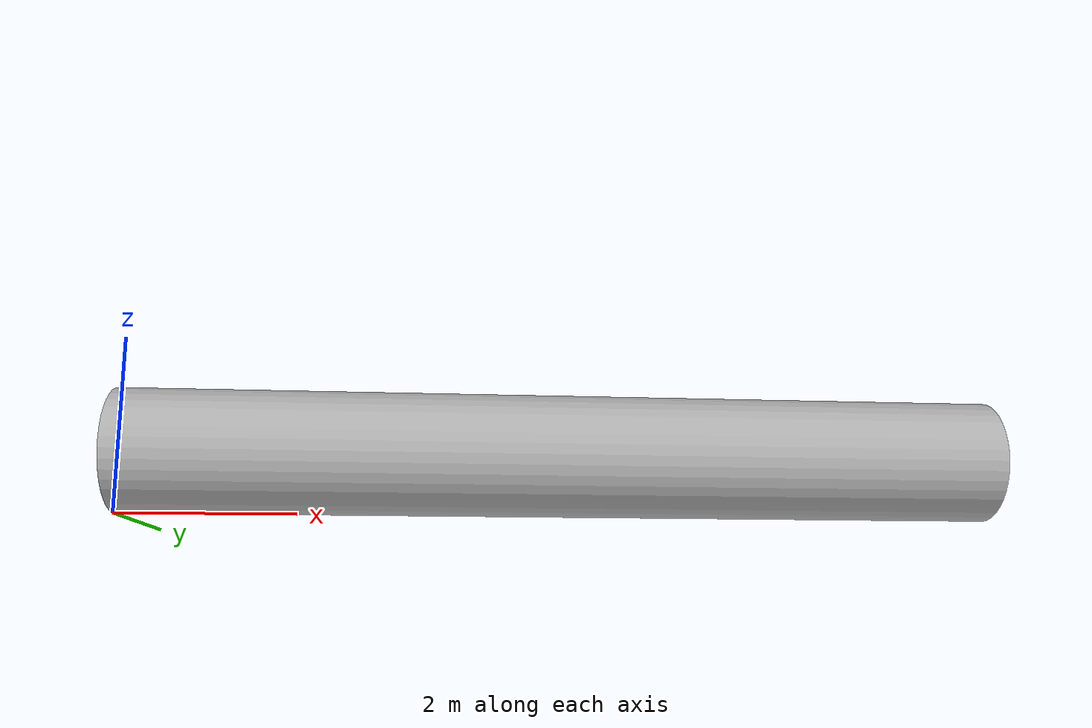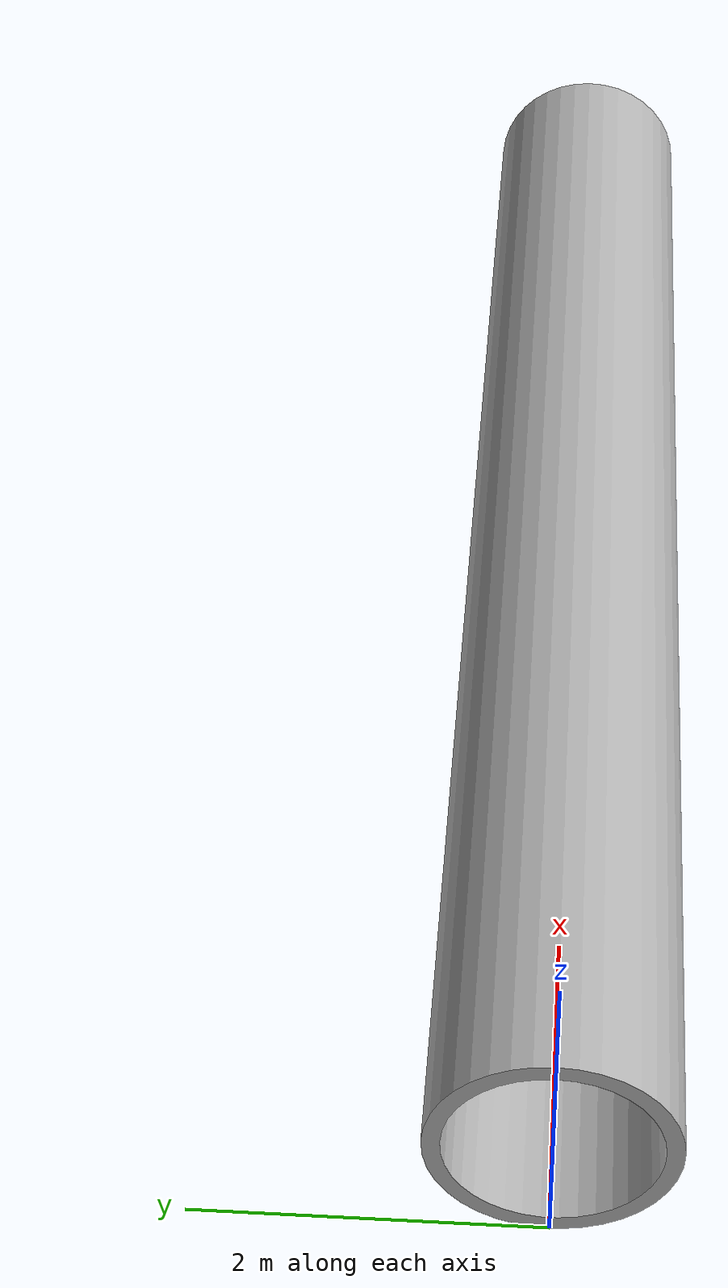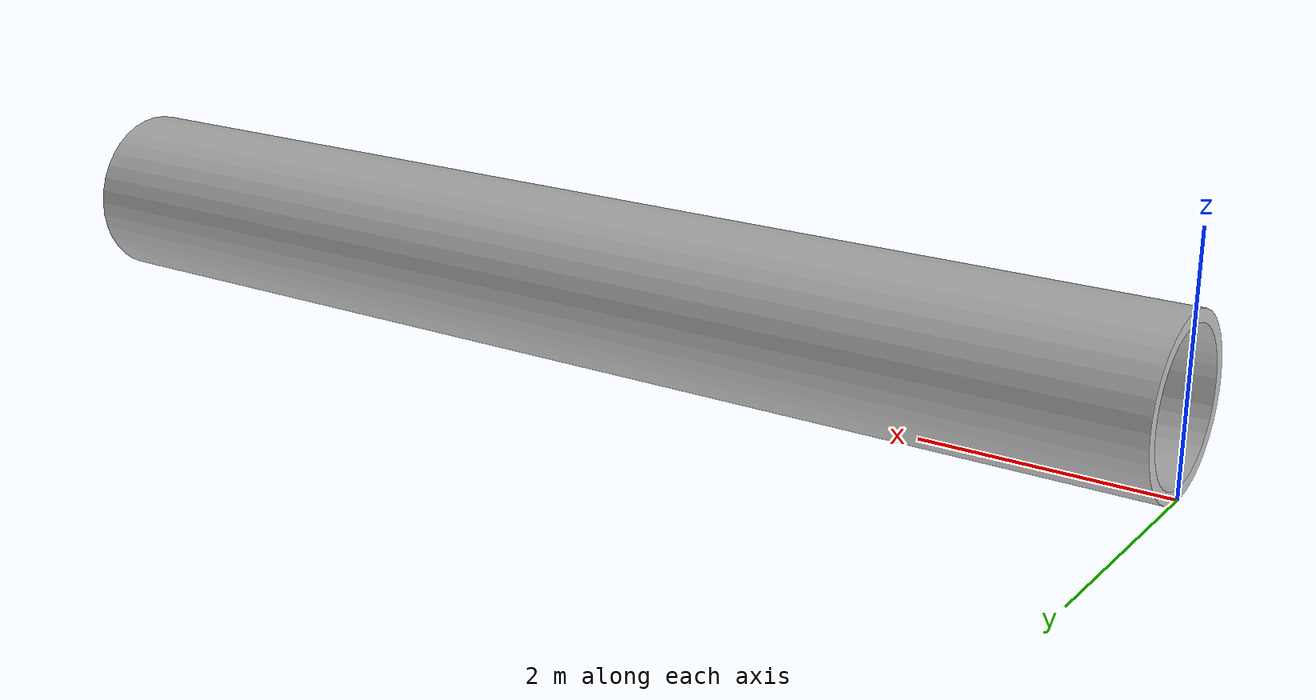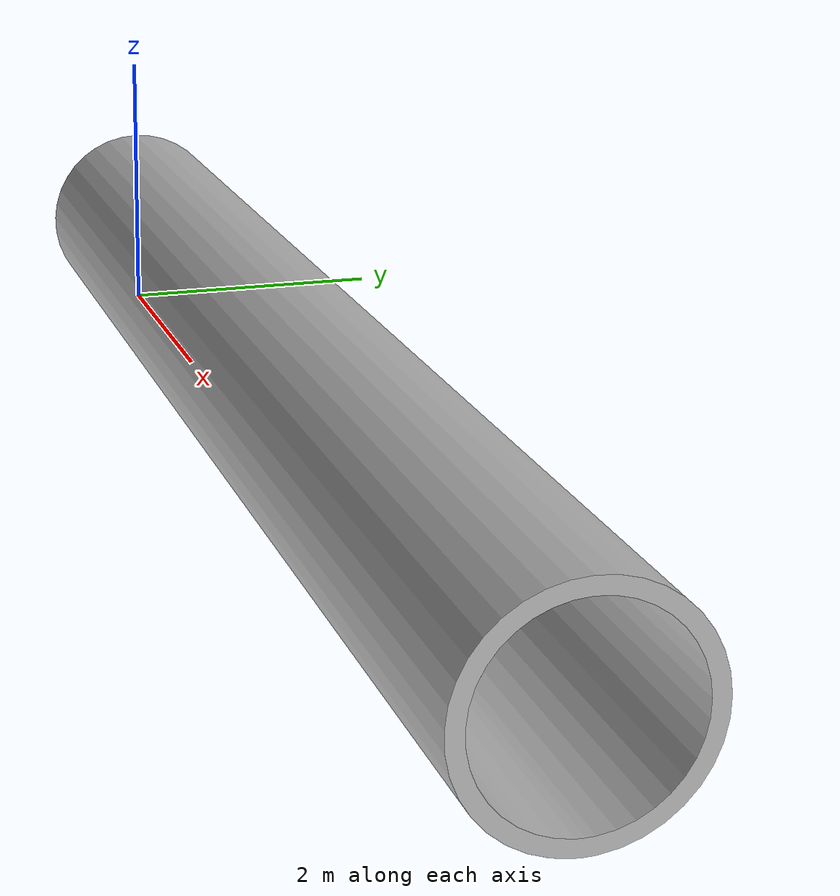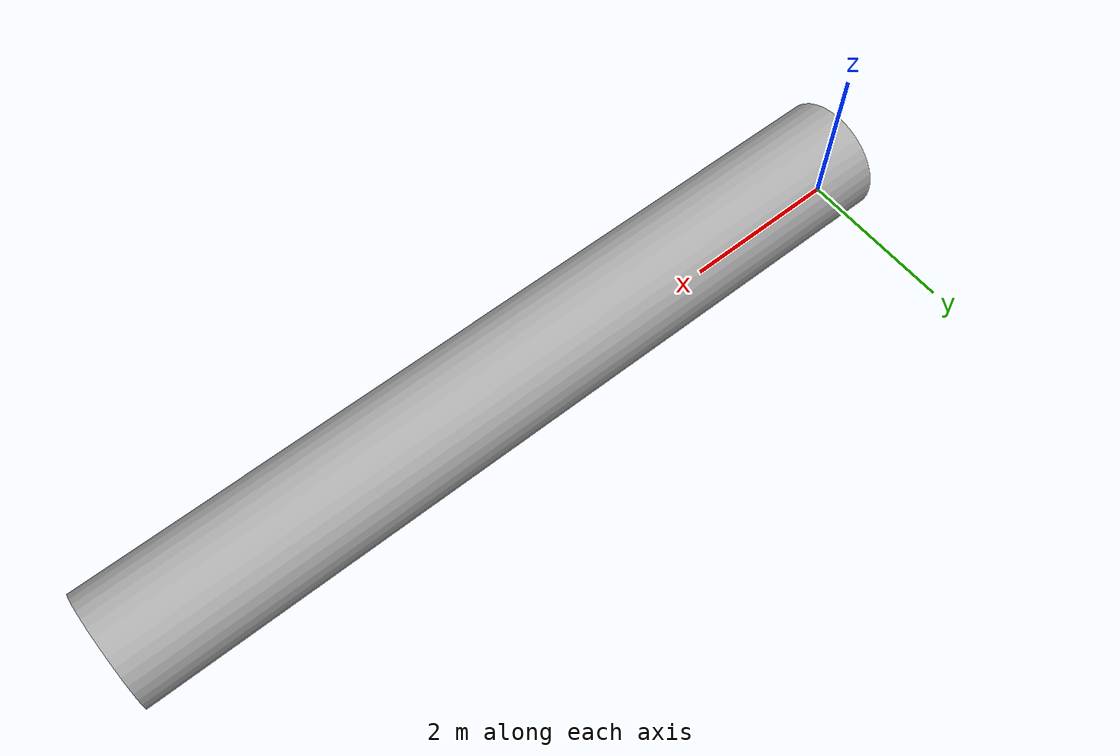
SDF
<?xml version='1.0'?>
<sdf version="1.6">

  <model name="pipe_1200mm">
    <static>true</static>

    <link name="link">
      <pose>0 0 0.7 0 1.570796327 0</pose>
      <collision name="collision">
        <geometry>
          <mesh>
            <uri>model://pipe_1200mm/meshes/1200mm.dae</uri>
          </mesh>
        </geometry>
      </collision>

      <visual name="visual">
        <geometry>
          <mesh>
            <uri>model://pipe_1200mm/meshes/1200mm.dae</uri>
          </mesh>
        </geometry>
      </visual>
    </link>

  </model>
</sdf>
